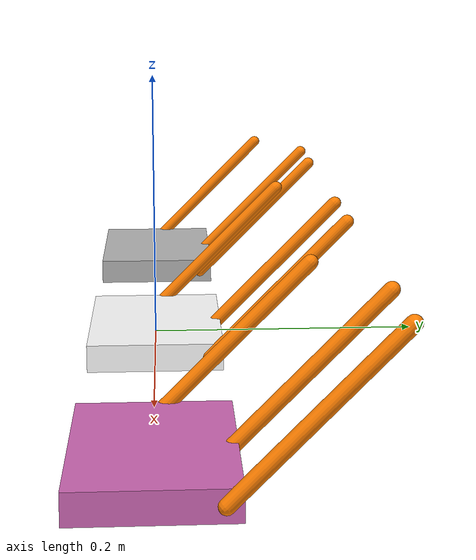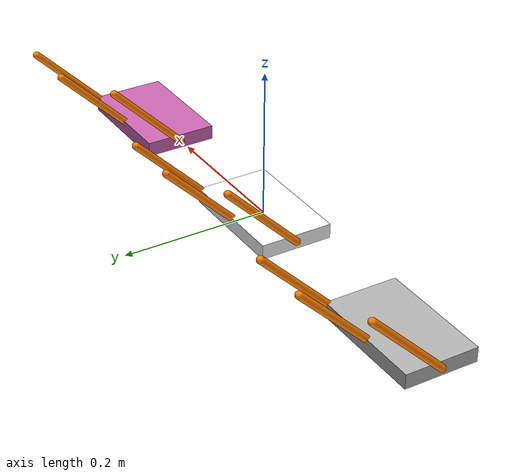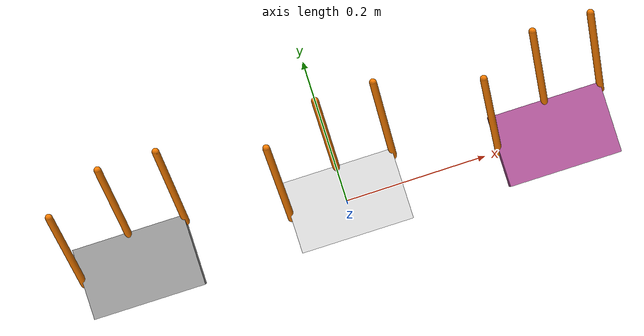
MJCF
<mujoco model="simple_hand">
  <compiler angle="degree" autolimits="true"/>

  <option timestep="0.002"/>

  <worldbody>
    <!-- 手掌 -->
    <body name="palm" pos="-0.3 0 0">
      <geom type="box" size="0.08 0.05 0.01" rgba="0.7 0.7 0.7 1"/>

      <body name="0" pos="0 0.04 0">
        <joint name="0" type="hinge" axis="0 1 0" range="-90 90"/>
        <geom type="capsule" size="0.005 " fromto="0 0 0 0 0.1 0.1" rgba="1 0.5 0 1"/>
      </body>

      <body name="1" pos="0.08 0.04 0">
        <joint name="1" type="hinge" axis="0 1 0" range="-90 90"/>
        <geom type="capsule" size="0.005 " fromto="0 0 0 0 0.1 0.1" rgba="1 0.5 0 1"/>
      </body>

      <body name="2" pos="-0.08 0 0">
        <joint name="2" type="hinge" axis="0 1 0" range="-90 90"/>
        <geom type="capsule" size="0.005 " fromto="0 0 0 0 0.1 0.1" rgba="1 0.5 0 1"/>
      </body>
    </body>

    <body name="palm1" pos="0 0 0">
      <geom type="box" size="0.08 0.05 0.01" rgba="1 1 1 1"/>

      <body name="0_1" pos="0 0.04 0">
        <joint name="0_1" type="hinge" axis="1 0 0" range="-90 90"/>
        <geom type="capsule" size="0.005 " fromto="0 0 0 0 0.1 0.1" rgba="1 0.5 0 1"/>
      </body>

      <body name="1_1" pos="0.08 0.04 0">
        <joint name="1_1" type="hinge" axis="1 1 0" range="-90 90"/>
        <geom type="capsule" size="0.005 " fromto="0 0 0 0 0.1 0.1" rgba="1 0.5 0 1"/>
      </body>

      <body name="2_1" pos="-0.08 0 0">
        <joint name="2_1" type="hinge" axis="1 1 0" range="-90 90"/>
        <geom type="capsule" size="0.005 " fromto="0 0 0 0 0.1 0.1" rgba="1 0.5 0 1"/>
      </body>
    </body>

    <body name="palm2" pos="0.3 0 0">
      <geom type="box" size="0.08 0.05 0.01" rgba="0.8 0.4 0.7 1" contype="0" conaffinity="0"/>

      <body name="0_2" pos="0 0.04 0">
        <joint name="0_2" type="hinge" axis="0 0 1" range="-90 90"/>
        <geom type="capsule" size="0.005 " fromto="0 0 0 0 0.1 0.1" rgba="1 0.5 0 1"/>
      </body>

      <body name="1_2" pos="0.08 0.04 0">
        <joint name="1_2" type="hinge" axis="0 0 1" range="-90 90"/>
        <geom type="capsule" size="0.005 " fromto="0 0 0 0 0.1 0.1" rgba="1 0.5 0 1"/>
      </body>

      <body name="2_2" pos="-0.08 0 0">
        <joint name="2_2" type="hinge" axis="0 0 1" range="-90 90"/>
        <geom type="capsule" size="0.005 " fromto="0 0 0 0 0.1 0.1" rgba="1 0.5 0 1"/>
      </body>

    </body>
  </worldbody>

  <actuator>
    <!-- 为每个关节添加 motor -->

  </actuator>

</mujoco>
